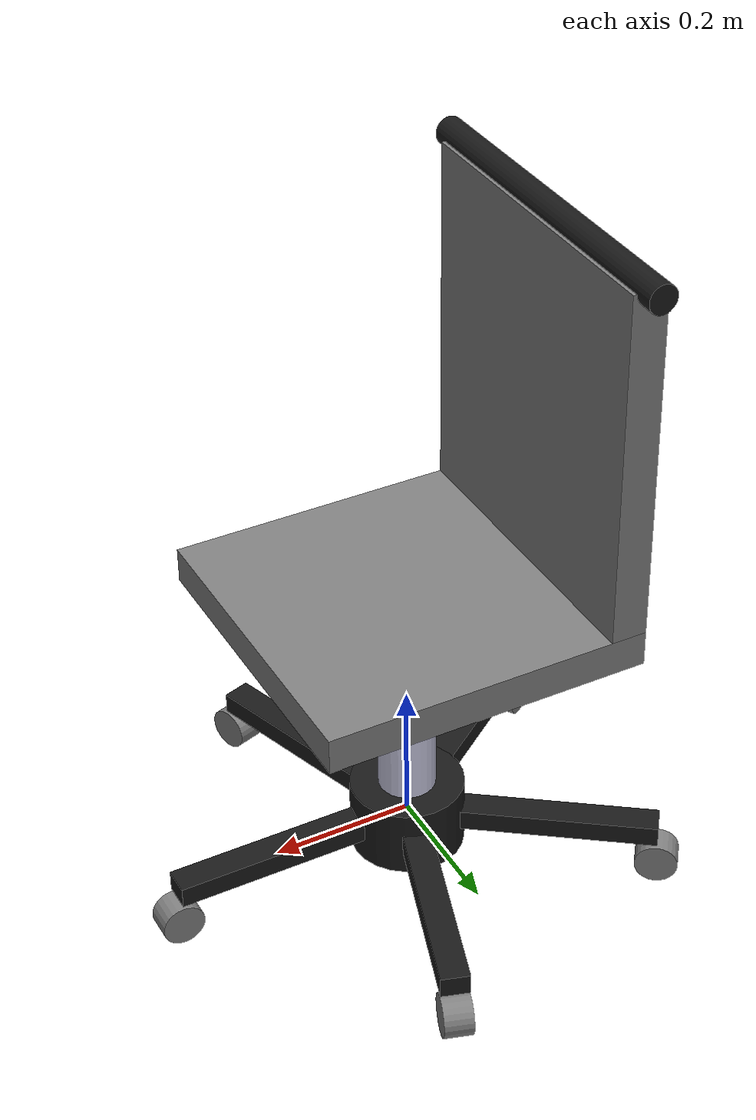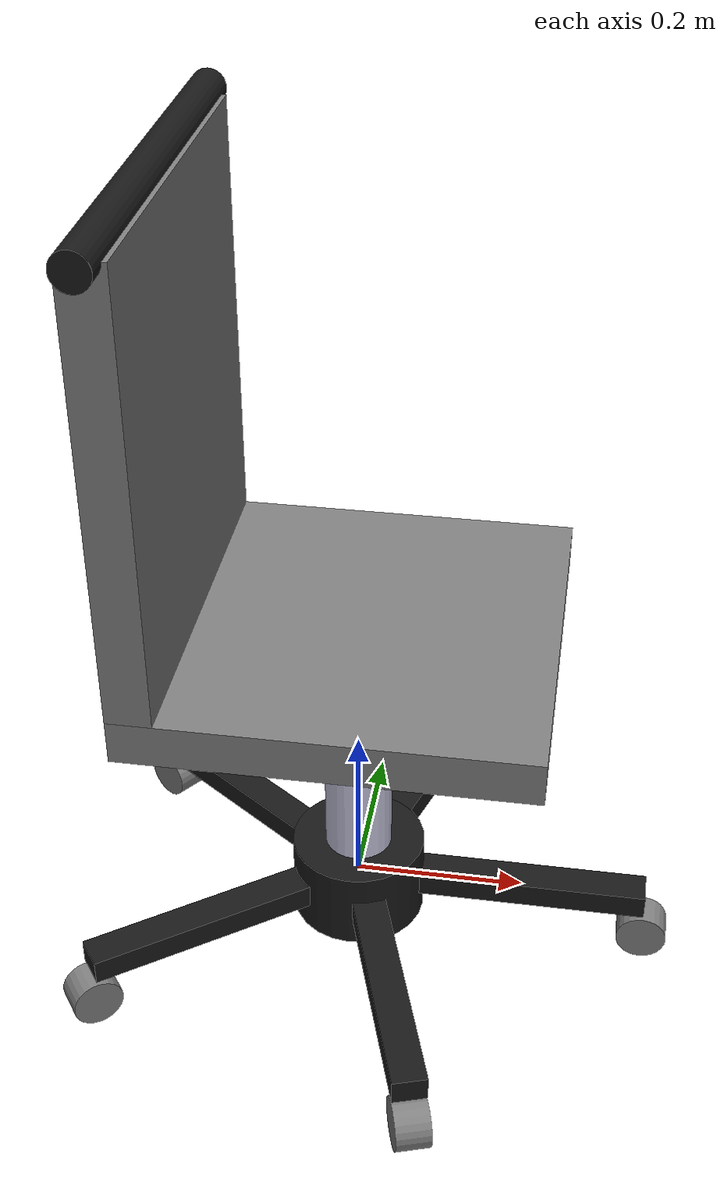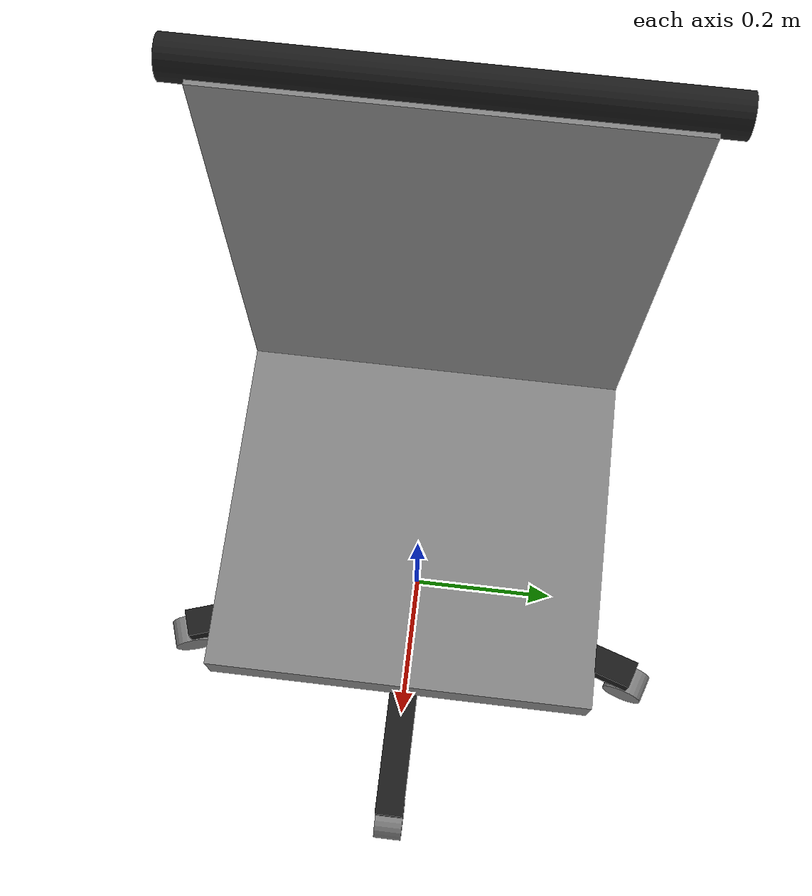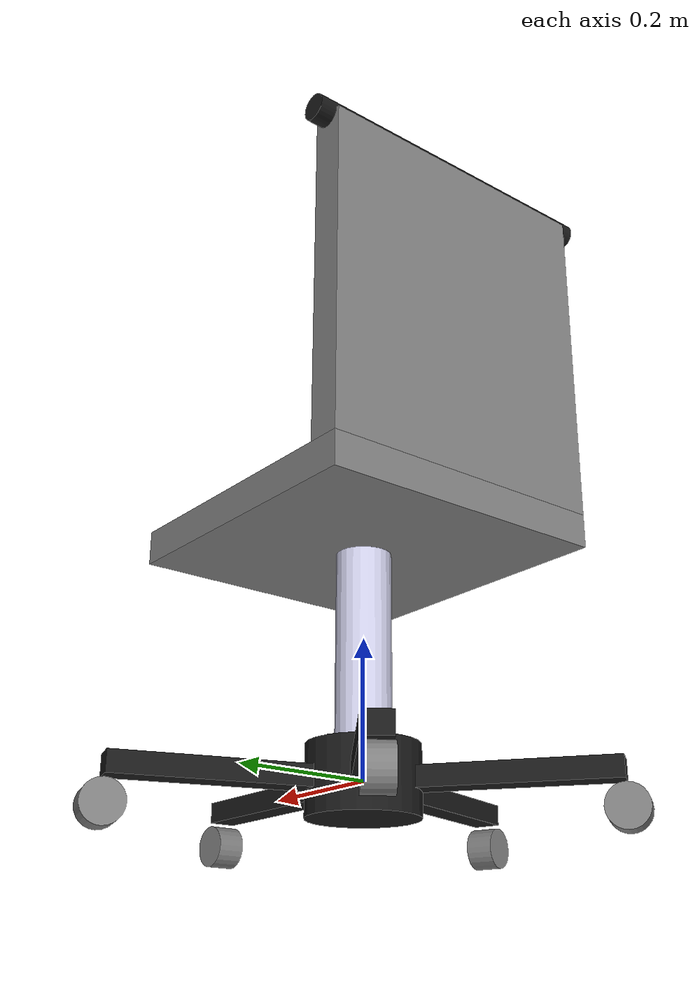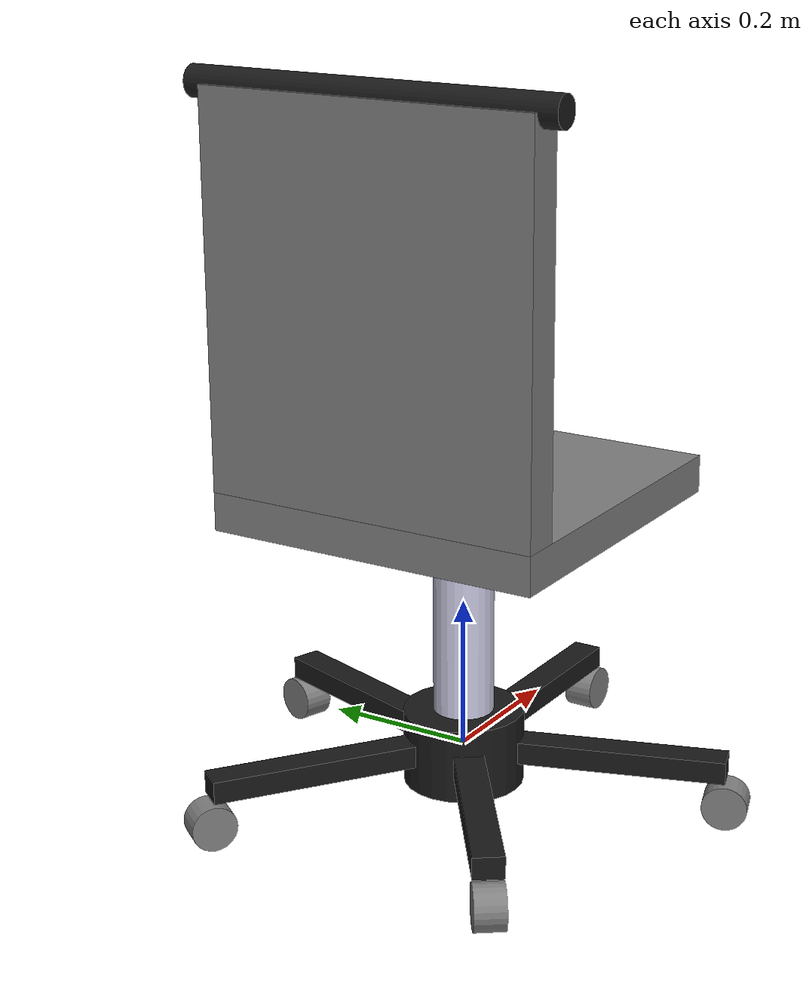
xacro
<?xml version="1.0"?>
<robot xmlns:xacro="http://www.ros.org/wiki/xacro" name="office_chair">

  <xacro:property name="leg_length" value="0.35" />
  <xacro:property name="wheel_radius" value="0.03" />
  <xacro:property name="rod_height" value="0.3" />
  <xacro:property name="seat_size" value="0.45" />
  <xacro:property name="backrest_height" value="0.5" />
  <xacro:property name="handle_radius" value="0.02" />
  <xacro:property name="handle_width" value="0.5" />

  <xacro:property name="slide_damping" value="10.0" /> <xacro:property name="slide_friction" value="5.0" /> <material name="black">
    <color rgba="0.1 0.1 0.1 1"/>
  </material>
  <material name="grey">
    <color rgba="0.5 0.5 0.5 1"/>
  </material>
  <material name="chrome">
    <color rgba="0.8 0.8 0.9 1"/>
  </material>
  <material name="red_target">
    <color rgba="1.0 0.0 0.0 1"/>
  </material>

  <xacro:macro name="default_inertial" params="mass">
    <inertial>
      <mass value="${mass}" />
      <inertia ixx="0.1" ixy="0.0" ixz="0.0" iyy="0.1" iyz="0.0" izz="0.1" />
    </inertial>
  </xacro:macro>

  <link name="world"/>

  <link name="slide_link_x">
    <xacro:default_inertial mass="0.1"/>
  </link>

  <joint name="floor_slide_x" type="prismatic">
    <parent link="world"/>
    <child link="slide_link_x"/>
    <axis xyz="1 0 0"/>
    <limit lower="-5.0" upper="5.0" effort="1000" velocity="2.0"/>
    <dynamics damping="${slide_damping}" friction="${slide_friction}"/>
  </joint>

  <link name="base_link">
    <visual>
      <geometry>
        <cylinder length="0.1" radius="0.08"/>
      </geometry>
      <material name="black"/>
    </visual>
    <collision>
      <geometry>
        <cylinder length="0.1" radius="0.08"/>
      </geometry>
    </collision>
    <xacro:default_inertial mass="5.0"/>
  </link>

  <joint name="floor_slide_y" type="prismatic">
    <parent link="slide_link_x"/>
    <child link="base_link"/>
    <axis xyz="0 1 0"/>
    <limit lower="-5.0" upper="5.0" effort="1000" velocity="2.0"/>
    <dynamics damping="${slide_damping}" friction="${slide_friction}"/>
  </joint>

  <xacro:macro name="chair_arm" params="index angle">
    <link name="leg_${index}">
      <visual>
        <origin xyz="${leg_length/2} 0 0" rpy="0 0 0"/>
        <geometry>
          <box size="${leg_length} 0.04 0.03"/>
        </geometry>
        <material name="black"/>
      </visual>
      <visual name="caster_wheel">
        <origin xyz="${leg_length} 0 -0.05" rpy="1.5708 0 0"/>
        <geometry>
          <cylinder length="0.04" radius="${wheel_radius}"/>
        </geometry>
        <material name="grey"/>
      </visual>
      <collision>
        <origin xyz="${leg_length/2} 0 -0.02" rpy="0 0 0"/>
        <geometry>
           <box size="${leg_length} 0.05 0.1"/>
        </geometry>
      </collision>
      <xacro:default_inertial mass="0.5"/>
    </link>

    <joint name="base_to_leg_${index}" type="fixed">
      <parent link="base_link"/>
      <child link="leg_${index}"/>
      <origin xyz="0 0 0" rpy="0 0 ${angle}"/>
    </joint>
  </xacro:macro>

  <xacro:chair_arm index="1" angle="0" />
  <xacro:chair_arm index="2" angle="1.2566" />
  <xacro:chair_arm index="3" angle="2.5132" />
  <xacro:chair_arm index="4" angle="3.7699" />
  <xacro:chair_arm index="5" angle="5.0265" />

  <link name="rod_link">
    <visual>
      <origin xyz="0 0 ${rod_height/2}" rpy="0 0 0"/>
      <geometry>
        <cylinder length="${rod_height}" radius="0.04"/>
      </geometry>
      <material name="chrome"/>
    </visual>
    <collision>
      <origin xyz="0 0 ${rod_height/2}" rpy="0 0 0"/>
      <geometry>
        <cylinder length="${rod_height}" radius="0.04"/>
      </geometry>
    </collision>
    <xacro:default_inertial mass="2.0"/>
  </link>

  <joint name="seat_swivel" type="continuous">
    <parent link="base_link"/>
    <child link="rod_link"/>
    <origin xyz="0 0 0.05" rpy="0 0 0"/>
    <axis xyz="0 0 1"/>
    <dynamics damping="1.0" friction="0.5"/>
  </joint>

  <link name="seat_surface_link">
    <visual>
      <geometry>
        <box size="${seat_size} ${seat_size} 0.05"/>
      </geometry>
      <material name="grey"/>
    </visual>
    <collision>
      <geometry>
        <box size="${seat_size} ${seat_size} 0.05"/>
      </geometry>
    </collision>
    <xacro:default_inertial mass="3.0"/>
  </link>

  <joint name="rod_to_seat" type="fixed">
    <parent link="rod_link"/>
    <child link="seat_surface_link"/>
    <origin xyz="0 0 ${rod_height}" rpy="0 0 0"/>
  </joint>

  <link name="backrest_link">
    <visual>
      <origin xyz="0 0 ${backrest_height/2}" rpy="0 0 0"/>
      <geometry>
        <box size="0.05 ${seat_size} ${backrest_height}"/>
      </geometry>
      <material name="grey"/>
    </visual>
    <collision>
      <origin xyz="0 0 ${backrest_height/2}" rpy="0 0 0"/>
      <geometry>
        <box size="0.05 ${seat_size} ${backrest_height}"/>
      </geometry>
    </collision>
    <xacro:default_inertial mass="2.0"/>
  </link>

  <joint name="seat_to_backrest" type="fixed">
    <parent link="seat_surface_link"/>
    <child link="backrest_link"/>
    <origin xyz="-${seat_size/2 - 0.025} 0 0.025" rpy="0 0 0"/>
  </joint>

  <link name="handle_link">
    <visual>
      <geometry>
        <cylinder length="${handle_width}" radius="${handle_radius}"/>
      </geometry>
      <material name="black"/>
    </visual>
    <collision>
      <geometry>
        <cylinder length="${handle_width}" radius="${handle_radius}"/>
      </geometry>
    </collision>
    <xacro:default_inertial mass="0.5"/>
  </link>

  <joint name="backrest_to_handle" type="fixed">
    <parent link="backrest_link"/>
    <child link="handle_link"/>
    <origin xyz="0 0 ${backrest_height}" rpy="1.5708 0 0"/>
  </joint>

  <link name="target_left_link">
    <visual>
      <geometry>
        <sphere radius="0.015"/> </geometry>
      <material name="red_target"/>
    </visual>
    </link>

  <joint name="handle_to_target_left" type="fixed">
    <parent link="handle_link"/>
    <child link="target_left_link"/>
    <origin xyz="0 0 ${handle_width/2 - 0.05}" rpy="0 0 0"/>
  </joint>

  <link name="target_right_link">
    <visual>
      <geometry>
        <sphere radius="0.015"/> </geometry>
      <material name="red_target"/>
    </visual>
  </link>

  <joint name="handle_to_target_right" type="fixed">
    <parent link="handle_link"/>
    <child link="target_right_link"/>
    <origin xyz="0 0 -${handle_width/2 - 0.05}" rpy="0 0 0"/>
  </joint>

</robot>
